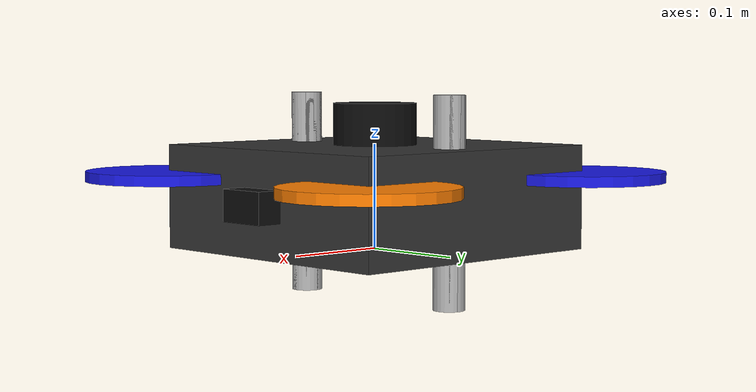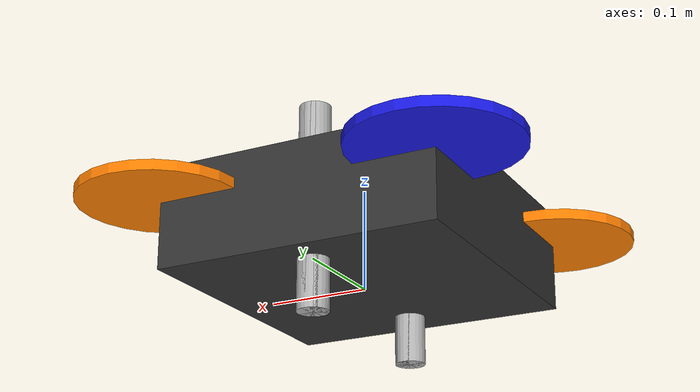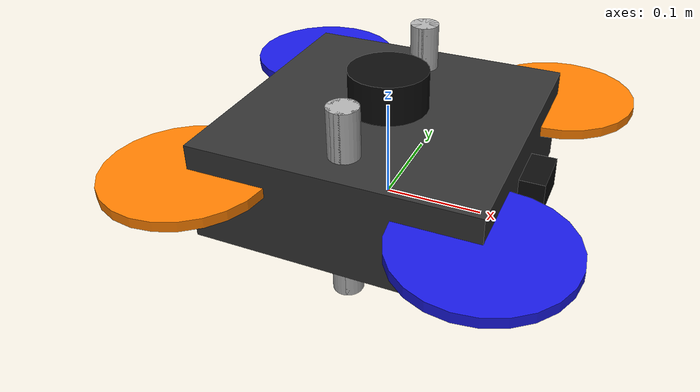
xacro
<?xml version="1.0"?>
<robot xmlns:xacro="http://www.ros.org/wiki/xacro" name="drone">

  <xacro:property name="body_length" value="0.28"/>
  <xacro:property name="body_width"  value="0.28"/>
  <xacro:property name="body_height" value="0.10"/>
  <xacro:property name="arm_length"  value="0.14"/>
  <xacro:property name="arm_radius"  value="0.015"/>
  <xacro:property name="rotor_radius" value="0.08"/>
  <xacro:property name="rotor_height" value="0.01"/>
  <xacro:property name="mass_body"   value="0.50"/>
  <xacro:property name="mass_rotor"  value="0.02"/>
  <xacro:property name="PI"          value="3.14159265358979"/>

  <!-- ===== Materials ===== -->
  <material name="dark_grey">
    <color rgba="0.2 0.2 0.2 1.0"/>
  </material>
  <material name="light_grey">
    <color rgba="0.7 0.7 0.7 1.0"/>
  </material>
  <material name="orange">
    <color rgba="1.0 0.5 0.0 1.0"/>
  </material>
  <material name="red">
    <color rgba="0.9 0.1 0.1 1.0"/>
  </material>
  <material name="blue">
    <color rgba="0.1 0.1 0.9 1.0"/>
  </material>
  <material name="black">
    <color rgba="0.05 0.05 0.05 1.0"/>
  </material>

  <!-- ===== Base Footprint ===== -->
  <link name="base_footprint"/>

  <joint name="base_footprint_joint" type="fixed">
    <parent link="base_footprint"/>
    <child  link="base_link"/>
    <origin xyz="0 0 0.05" rpy="0 0 0"/>
  </joint>

  <!-- ===== Drone Body ===== -->
  <link name="base_link">
    <visual>
      <origin xyz="0 0 0" rpy="0 0 0"/>
      <geometry>
        <box size="${body_length} ${body_width} ${body_height}"/>
      </geometry>
      <material name="dark_grey"/>
    </visual>
    <collision>
      <origin xyz="0 0 0" rpy="0 0 0"/>
      <geometry>
        <box size="${body_length} ${body_width} ${body_height}"/>
      </geometry>
    </collision>
    <inertial>
      <mass value="${mass_body}"/>
      <origin xyz="0 0 0" rpy="0 0 0"/>
      <inertia
        ixx="${mass_body/12.0*(body_width*body_width+body_height*body_height)}"
        iyy="${mass_body/12.0*(body_length*body_length+body_height*body_height)}"
        izz="${mass_body/12.0*(body_length*body_length+body_width*body_width)}"
        ixy="0" ixz="0" iyz="0"/>
    </inertial>
  </link>

  <!-- ===== Rotor Macro ===== -->
  <xacro:macro name="rotor" params="name x y cw">
    <!-- Arm -->
    <link name="${name}_arm">
      <visual>
        <origin xyz="${x/2} ${y/2} 0" rpy="0 0 0"/>
        <geometry>
          <cylinder radius="${arm_radius}" length="${arm_length * 1.414}"/>
        </geometry>
        <material name="light_grey"/>
      </visual>
      <inertial>
        <mass value="0.01"/>
        <inertia ixx="0.0001" iyy="0.0001" izz="0.0001" ixy="0" ixz="0" iyz="0"/>
      </inertial>
    </link>
    <joint name="${name}_arm_joint" type="fixed">
      <parent link="base_link"/>
      <child  link="${name}_arm"/>
      <origin xyz="0 0 0" rpy="0 0 ${0.785398 if cw == 1 else -0.785398 + PI}"/>
    </joint>

    <!-- Rotor hub -->
    <link name="${name}">
      <visual>
        <origin xyz="0 0 0.015" rpy="0 0 0"/>
        <geometry>
          <cylinder radius="${rotor_radius}" length="${rotor_height}"/>
        </geometry>
        <material name="${'orange' if cw == 1 else 'blue'}"/>
      </visual>
      <inertial>
        <mass value="${mass_rotor}"/>
        <inertia ixx="0.00001" iyy="0.00001" izz="0.00001" ixy="0" ixz="0" iyz="0"/>
      </inertial>
    </link>
    <joint name="${name}_joint" type="continuous">
      <parent link="base_link"/>
      <child  link="${name}"/>
      <origin xyz="${x} ${y} 0.005" rpy="0 0 0"/>
      <axis xyz="0 0 1"/>
    </joint>
  </xacro:macro>

  <!-- Instantiate 4 rotors: front-left, front-right, rear-left, rear-right -->
  <xacro:rotor name="rotor_fl" x=" ${arm_length}" y=" ${arm_length}" cw="1"/>
  <xacro:rotor name="rotor_fr" x=" ${arm_length}" y="-${arm_length}" cw="-1"/>
  <xacro:rotor name="rotor_rl" x="-${arm_length}" y=" ${arm_length}" cw="-1"/>
  <xacro:rotor name="rotor_rr" x="-${arm_length}" y="-${arm_length}" cw="1"/>

  <!-- ===== Lidar Link ===== -->
  <link name="lidar_link">
    <visual>
      <origin xyz="0 0 0" rpy="0 0 0"/>
      <geometry>
        <cylinder radius="0.04" length="0.04"/>
      </geometry>
      <material name="black"/>
    </visual>
    <collision>
      <origin xyz="0 0 0" rpy="0 0 0"/>
      <geometry>
        <cylinder radius="0.04" length="0.04"/>
      </geometry>
    </collision>
    <inertial>
      <mass value="0.05"/>
      <inertia ixx="0.00001" iyy="0.00001" izz="0.00001" ixy="0" ixz="0" iyz="0"/>
    </inertial>
  </link>
  <joint name="lidar_joint" type="fixed">
    <parent link="base_link"/>
    <child  link="lidar_link"/>
    <origin xyz="0 0 0.07" rpy="0 0 0"/>
  </joint>

  <!-- ===== IMU Link ===== -->
  <link name="imu_link">
    <inertial>
      <mass value="0.001"/>
      <inertia ixx="0.000001" iyy="0.000001" izz="0.000001" ixy="0" ixz="0" iyz="0"/>
    </inertial>
  </link>
  <joint name="imu_joint" type="fixed">
    <parent link="base_link"/>
    <child  link="imu_link"/>
    <origin xyz="0 0 0" rpy="0 0 0"/>
  </joint>

  <!-- ===== Camera Link (optional, for visual reference) ===== -->
  <link name="camera_link">
    <visual>
      <origin xyz="0 0 0" rpy="0 0 0"/>
      <geometry>
        <box size="0.03 0.05 0.03"/>
      </geometry>
      <material name="black"/>
    </visual>
    <inertial>
      <mass value="0.01"/>
      <inertia ixx="0.00001" iyy="0.00001" izz="0.00001" ixy="0" ixz="0" iyz="0"/>
    </inertial>
  </link>
  <joint name="camera_joint" type="fixed">
    <parent link="base_link"/>
    <child  link="camera_link"/>
    <origin xyz="0.15 0 0" rpy="0 0 0"/>
  </joint>

  <!-- ===== Gazebo Plugins ===== -->

  <gazebo>
    <plugin filename="gz-sim-diff-drive-system"
            name="gz::sim::systems::DiffDrive">
      <left_joint>rotor_fl_joint</left_joint>
      <right_joint>rotor_fr_joint</right_joint>
      <wheel_separation>${body_width}</wheel_separation>
      <wheel_radius>${rotor_radius}</wheel_radius>
      <odom_publish_frequency>30</odom_publish_frequency>
      <topic>cmd_vel</topic>
      <odom_topic>odom</odom_topic>
      <tf_topic>tf</tf_topic>
      <frame_id>odom</frame_id>
      <child_frame_id>base_link</child_frame_id>
      <max_linear_acceleration>1.0</max_linear_acceleration>
    </plugin>
  </gazebo>

  <!-- Joint State Publisher -->
  <gazebo>
    <plugin filename="gz-sim-joint-state-publisher-system"
            name="gz::sim::systems::JointStatePublisher">
      <topic>joint_states</topic>
    </plugin>
  </gazebo>

  <!-- Pose publisher for TF -->
  <gazebo>
    <plugin filename="gz-sim-pose-publisher-system"
            name="gz::sim::systems::PosePublisher">
      <publish_link_pose>true</publish_link_pose>
      <use_pose_vector_msg>true</use_pose_vector_msg>
      <static_publisher>true</static_publisher>
      <static_update_frequency>1</static_update_frequency>
    </plugin>
  </gazebo>

  <!-- Odometry publisher -->
  <gazebo>
    <plugin filename="gz-sim-odometry-publisher-system"
            name="gz::sim::systems::OdometryPublisher">
      <odom_frame>odom</odom_frame>
      <robot_base_frame>base_link</robot_base_frame>
      <odom_topic>odom</odom_topic>
      <odom_publish_frequency>30</odom_publish_frequency>
    </plugin>
  </gazebo>

  <!-- 2D Lidar Sensor -->
  <gazebo reference="lidar_link">
    <sensor name="lidar" type="gpu_lidar">
      <update_rate>10</update_rate>
      <topic>scan</topic>
      <gz_frame_id>lidar_link</gz_frame_id>
      <lidar>
        <scan>
          <horizontal>
            <samples>360</samples>
            <resolution>1</resolution>
            <min_angle>-${PI}</min_angle>
            <max_angle>${PI}</max_angle>
          </horizontal>
        </scan>
        <range>
          <min>0.12</min>
          <max>10.0</max>
          <resolution>0.01</resolution>
        </range>
        <noise>
          <type>gaussian</type>
          <mean>0.0</mean>
          <stddev>0.01</stddev>
        </noise>
      </lidar>
      <alwaysOn>true</alwaysOn>
      <visualize>true</visualize>
    </sensor>
  </gazebo>

  <!-- IMU Sensor -->
  <gazebo reference="imu_link">
    <sensor name="imu_sensor" type="imu">
      <topic>imu</topic>
      <update_rate>100</update_rate>
      <gz_frame_id>imu_link</gz_frame_id>
      <imu>
        <angular_velocity>
          <x><noise type="gaussian"><mean>0.0</mean><stddev>0.00018665</stddev></noise></x>
          <y><noise type="gaussian"><mean>0.0</mean><stddev>0.00018665</stddev></noise></y>
          <z><noise type="gaussian"><mean>0.0</mean><stddev>0.00018665</stddev></noise></z>
        </angular_velocity>
        <linear_acceleration>
          <x><noise type="gaussian"><mean>0.0</mean><stddev>0.00186</stddev></noise></x>
          <y><noise type="gaussian"><mean>0.0</mean><stddev>0.00186</stddev></noise></y>
          <z><noise type="gaussian"><mean>0.0</mean><stddev>0.00186</stddev></noise></z>
        </linear_acceleration>
      </imu>
    </sensor>
  </gazebo>

</robot>
